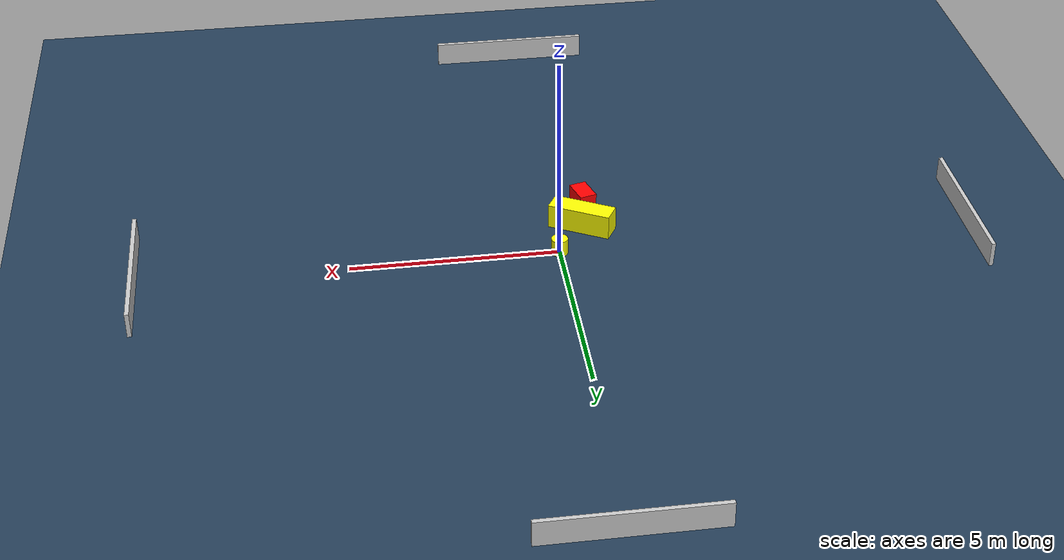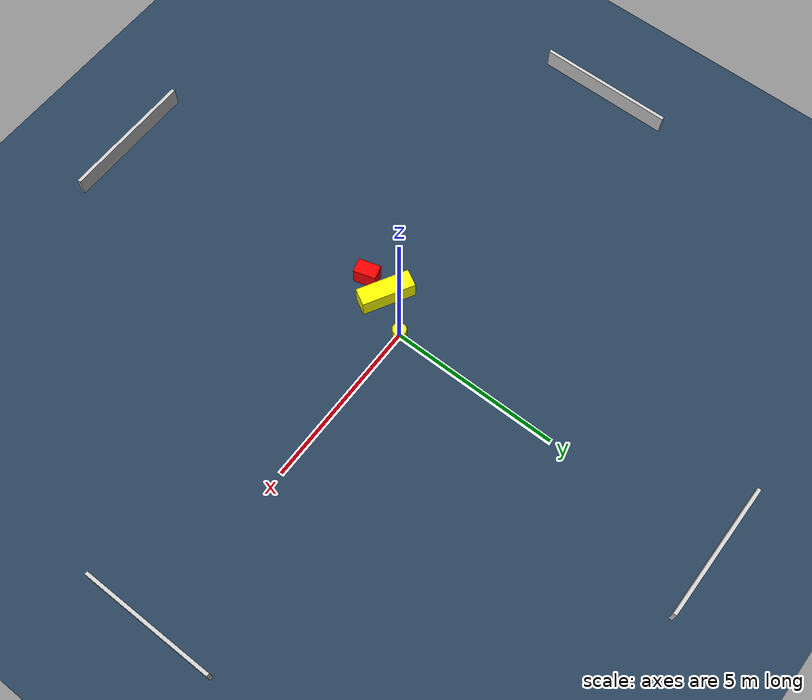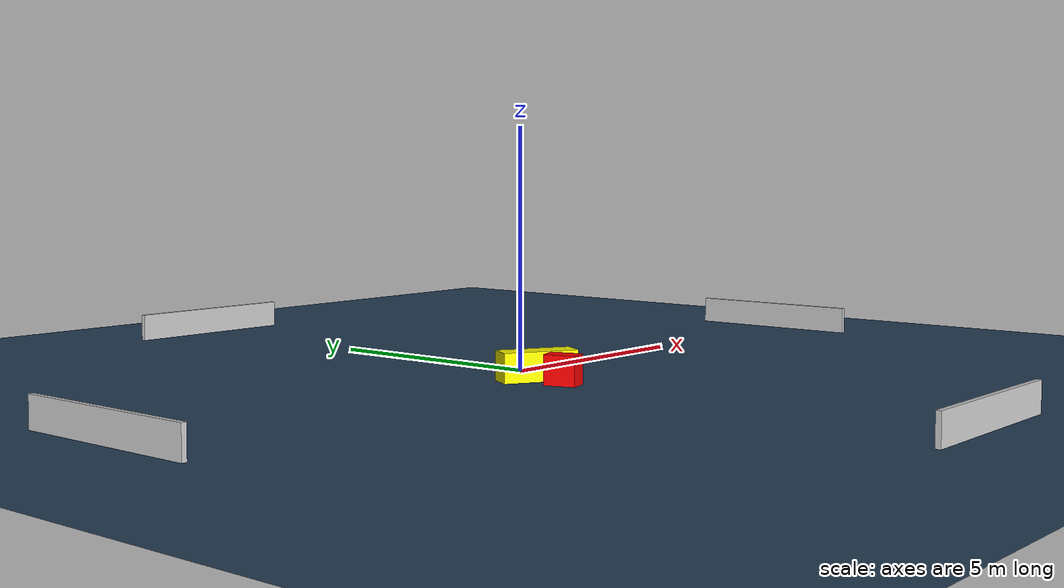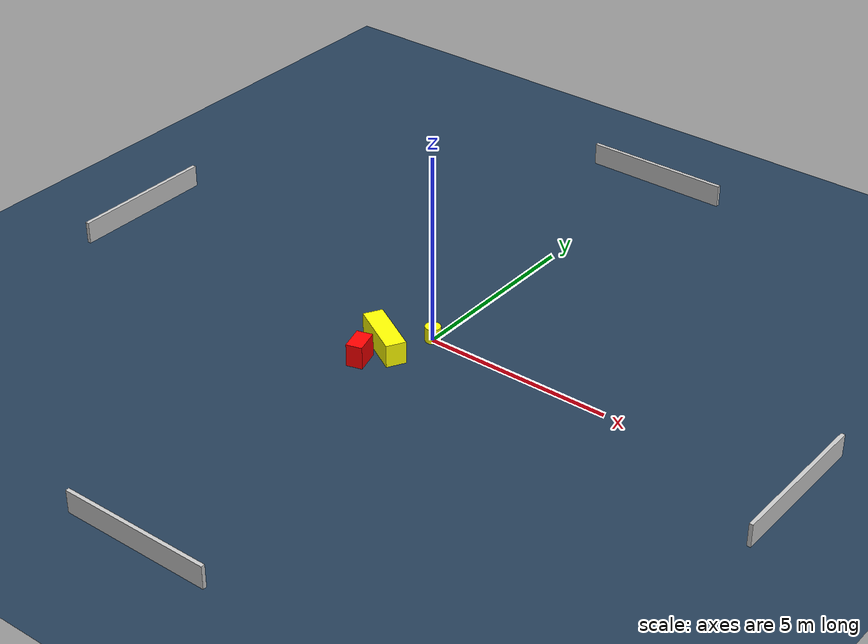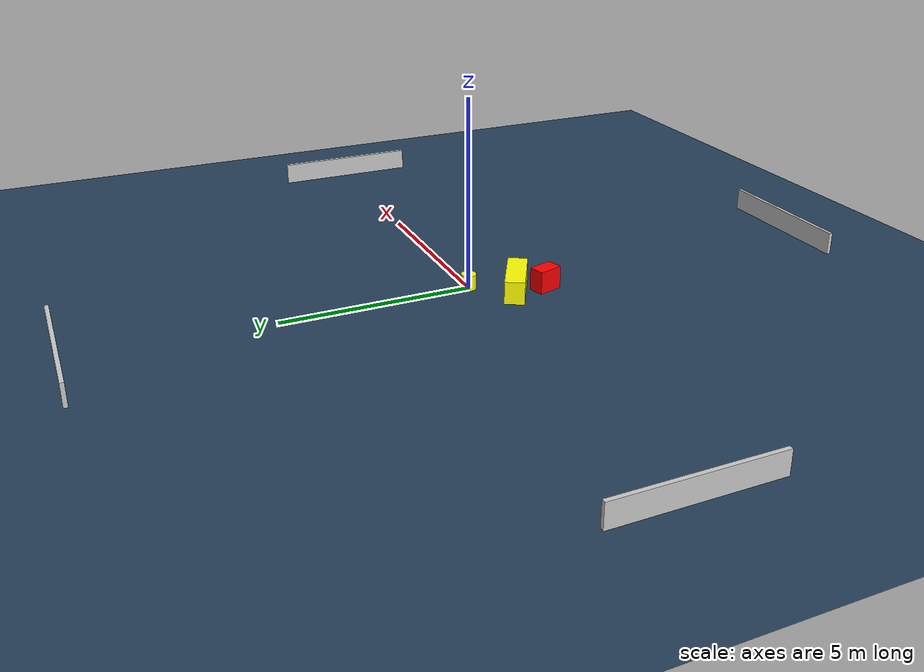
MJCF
<?xml version="1.0" ?>
<mujoco model="generated_environment">
  <option timestep="0.01" integrator="RK4" cone="elliptic"/>
  <default>
    <geom density="1"/>
  </default>
  <asset>
    <texture builtin="gradient" height="3072" name="skybox" rgb1="0.3 0.5 0.7" rgb2="0 0 0" type="skybox" width="512"/>
    <texture builtin="checker" height="300" name="groundplane" rgb1="0.2 0.3 0.4" rgb2="0.1 0.2 0.3" type="2d" width="300"/>
    <material name="groundplane" reflectance="0.2" texrepeat="5 5" texture="groundplane"/>
  </asset>
  <worldbody>
    <light dir="0 0 -1" directional="true" pos="0 0 1.5"/>
    <geom condim="3" friction="0.5 0.005 0.001" material="groundplane" name="floor" pos="0 0 0" size="0 0 0.05" type="plane"/>
    <body name="walls">
      <geom name="wall_1" condim="4" pos="-10.0 0.0 0.3" rgba="0.800000011920929 0.800000011920929 0.800000011920929 1.0" size="0.05 2.0 0.3" type="box"/>
      <geom name="wall_2" condim="4" pos="10.0 0.0 0.3" rgba="0.800000011920929 0.800000011920929 0.800000011920929 1.0" size="0.05 2.0 0.3" type="box"/>
      <geom name="wall_3" condim="4" pos="0.0 -10.0 0.3" rgba="0.800000011920929 0.800000011920929 0.800000011920929 1.0" size="2.0 0.05 0.3" type="box"/>
      <geom name="wall_4" condim="4" pos="0.0 10.0 0.3" rgba="0.800000011920929 0.800000011920929 0.800000011920929 1.0" size="2.0 0.05 0.3" type="box"/>
    </body>
    <body name="robot">
      <joint name="joint_x" type="slide" pos="0 0 0" axis="1 0 0"/>
      <joint name="joint_y" type="slide" pos="0 0 0" axis="0 1 0"/>
      <geom name="robot" type="cylinder" pos="0.0 0.0 0.2" size="0.2 0.2 0.0" mass="5.0" friction="1.0 0.005 0.0001" condim="4" rgba="1.0 1.0 0.0 1.0"/>
    </body>
    <body name="obstacle_1_movable">
      <geom name="obstacle_1_movable" condim="4" pos="-0.6913964471952764 -1.0119214028327308 0.3" euler="0 0 150.71455116533915" friction="0.0 0.005 0.001" rgba="1.0 1.0 0.0 1.0" size="0.7774883832391002 0.2578722841901853 0.3" type="box" mass="0.1"/>
      <joint type="free"/>
    </body>
    <body name="obstacle_2_static">
      <geom name="obstacle_2_static" condim="4" pos="-0.8299205162875584 -1.7737130816620488 0.3" euler="0 0 106.11661810547578" friction="0.0 0.005 0.001" rgba="1.0 0.0 0.0 1.0" size="0.32746726663227915 0.20942149298423549 0.3" type="box"/>
    </body>
  </worldbody>
  <actuator>
    <motor name="actuator_x" joint="joint_x" gear="1" ctrlrange="-1 1"/>
    <motor name="actuator_y" joint="joint_y" gear="1" ctrlrange="-1 1"/>
  </actuator>
</mujoco>
